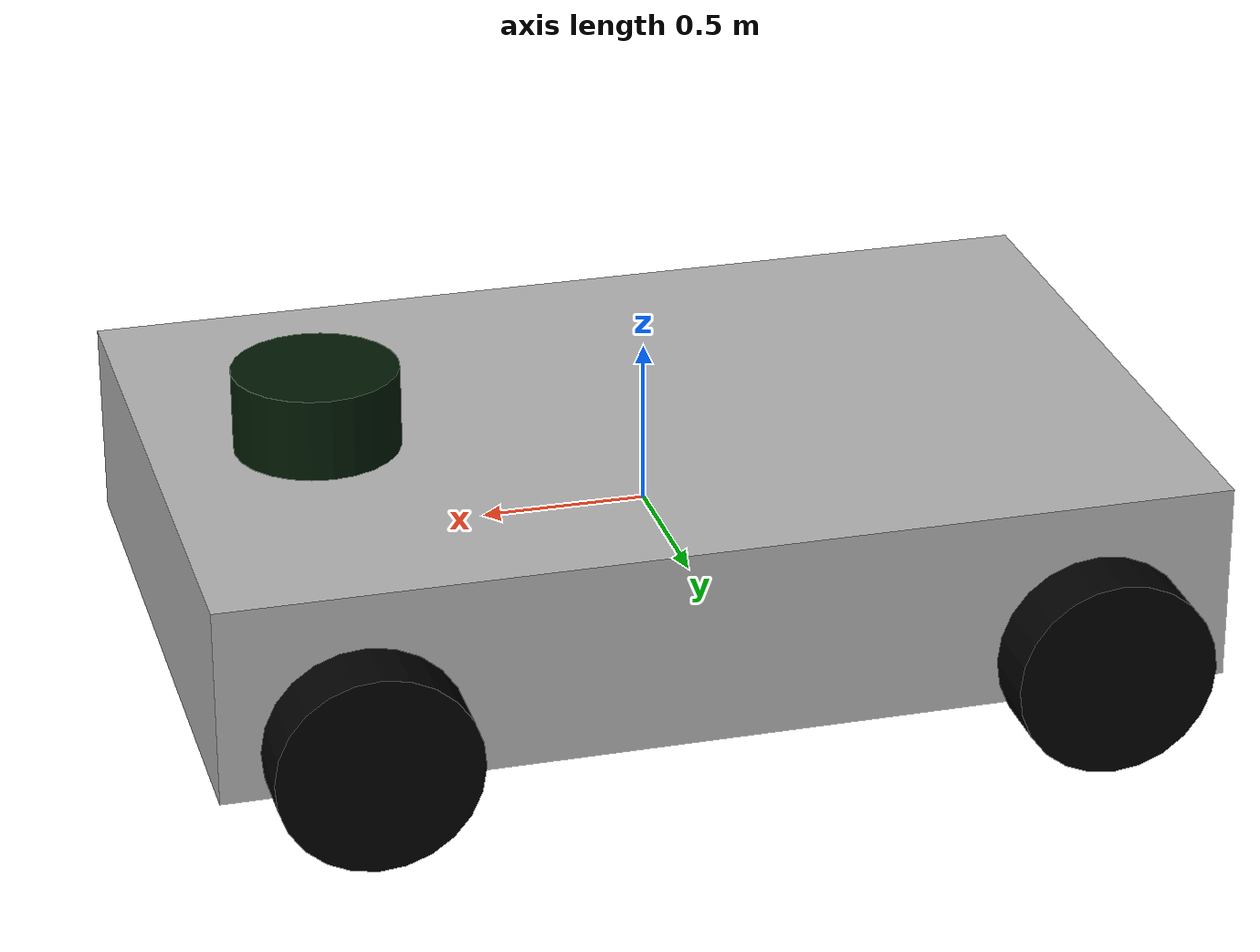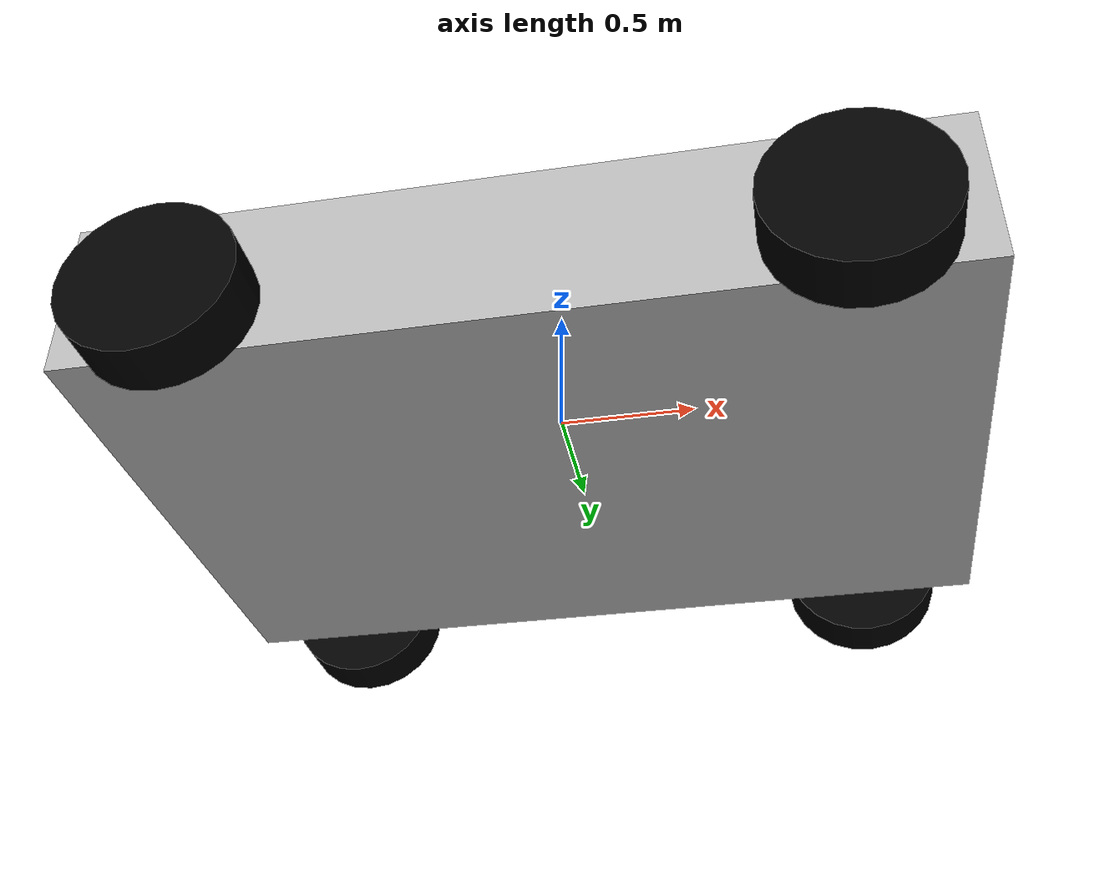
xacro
<?xml version="1.0"?>
<robot name="perez_ros" xmlns:xacro="http://www.ros.org/wiki/xacro">
  <xacro:include filename="$(find perez)/urdf/materials.xacro" />
  <xacro:include filename="$(find perez)/urdf/perez_ros.gazebo.xacro" />

  <joint name="camera_link_joint" type="fixed">
    <origin rpy="0 0 0" xyz="1.43905 0.00396 0.18036" />
    <parent link="Cube_link" />
    <child link="camera_link" />
  </joint>

  <joint name="left_back_wheel_link_joint" type="continuous">
    <origin rpy="-1.57080 0.00000 0.00000" xyz="-1.08220 1.12533 -0.15000" />
    <parent link="Cube_link" />
    <child link="left_back_wheel_link" />
    <axis xyz="0.00000 0.00000 1.00000" />
  </joint>
  <joint name="left_front_wheel_link_joint" type="continuous">
    <origin rpy="-1.57080 0.00000 0.00000" xyz="1.08220 1.12533 -0.15000" />
    <parent link="Cube_link" />
    <child link="left_front_wheel_link" />
    <axis xyz="0.00000 0.00000 1.00000" />
  </joint>
  <joint name="lidar_link_joint" type="fixed">
    <origin rpy="0.00000 0.00000 0.00000" xyz="1.00000 0.00000 0.40000" />
    <parent link="Cube_link" />
    <child link="lidar_link" />
  </joint>
  <joint name="right_back_wheel_link_joint" type="continuous">
    <origin rpy="1.57080 0.00000 0.00000" xyz="-1.08220 -1.12533 -0.15000" />
    <parent link="Cube_link" />
    <child link="right_back_wheel_link" />
    <axis xyz="0.00000 0.00000 -1.00000" />
  </joint>
  <joint name="right_front_wheel_link_joint" type="continuous">
    <origin rpy="1.57080 0.00000 0.00000" xyz="1.08220 -1.12533 -0.15000" />
    <parent link="Cube_link" />
    <child link="right_front_wheel_link" />
    <axis xyz="0.00000 0.00000 -1.00000" />
  </joint>
  <link name="Cube_link">
    <collision name="Cube_collision">
      <origin rpy="0.00000 0.00000 0.00000" xyz="-0.00000 -0.00000 0.00000" />
      <geometry>
        <box size="3.00000 2.00000 0.60000" />
      </geometry>
    </collision>
    <inertial>
      <inertia ixx="0.34880" ixy="0.00000" ixz="0.00000" iyy="0.74880" iyz="0.00000" izz="1.04000" />
      <origin rpy="0.00000 0.00000 0.00000" xyz="-0.00000 -0.00000 0.00000" />
      <mass value="0.96000" />
    </inertial>
    <visual name="Cube">
      <material name="body" />
      <origin rpy="0.00000 0.00000 0.00000" xyz="0.00000 0.00000 0.00000" />
      <geometry>
        <box size="3.00000 2.00000 0.60000" />
      </geometry>
    </visual>
  </link>
  <link name="camera_link">
    <collision name="camera_collision">
      <origin rpy="-0.00000 -0.00000 0.00000" xyz="-0.00000 -0.00000 0.00000" />
      <geometry>
        <box size="0.09091 0.09091 0.20000" />
      </geometry>
    </collision>
    <inertial>
      <inertia ixx="0.00132" ixy="0.00000" ixz="-0.00000" iyy="0.00386" iyz="0.00000" izz="0.00386" />
      <origin rpy="0.00000 0.00000 0.00000" xyz="0.00000 0.00000 0.00000" />
      <mass value="0.96000" />
    </inertial>
    <visual name="camera">
      <material name="camera" />
      <origin rpy="-1.57080 -1.57080 0.00000" xyz="-0.00000 -0.00000 0.00000" />
      <geometry>
        <box size="0.20000 0.09091 0.09091" />
      </geometry>
    </visual>
  </link>
  <link name="left_back_wheel_link">
    <collision name="left_back_wheel_collision">
      <origin rpy="0.00000 -0.00000 -1.57080" xyz="0.00000 0.00000 0.00000" />
      <geometry>
        <cylinder radius="0.30000" length="0.20000" />
      </geometry>
    </collision>
    <inertial>
      <inertia ixx="0.02480" ixy="0.00000" ixz="0.00000" iyy="0.04320" iyz="-0.00000" izz="0.02480" />
      <origin rpy="0.00000 0.00000 0.00000" xyz="0.00000 0.00000 0.00000" />
      <mass value="0.96000" />
    </inertial>
    <visual name="left_back_wheel">
      <material name="tire" />
      <origin rpy="0.00000 0.00000 0.00000" xyz="0.00000 -0.00000 0.00000" />
      <geometry>
        <cylinder radius="0.30000" length="0.20000" />
      </geometry>
    </visual>
  </link>
  <link name="left_front_wheel_link">
    <collision name="left_front_wheel_collision">
      <origin rpy="-0.00000 -0.00000 1.57080" xyz="0.00000 0.00000 0.00000" />
      <geometry>
        <cylinder radius="0.30000" length="0.20000" />
      </geometry>
    </collision>
    <inertial>
      <inertia ixx="0.02480" ixy="0.00000" ixz="0.00000" iyy="0.04320" iyz="-0.00000" izz="0.02480" />
      <origin rpy="0.00000 0.00000 0.00000" xyz="0.00000 0.00000 0.00000" />
      <mass value="0.96000" />
    </inertial>
    <visual name="left_front_wheel">
      <material name="tire" />
      <origin rpy="-0.00000 0.00000 -2.39675" xyz="-0.00000 0.00000 0.00000" />
      <geometry>
        <cylinder radius="0.30000" length="0.20000" />
      </geometry>
    </visual>
  </link>
  <link name="lidar_link">
    <collision name="lidar_collision">
      <origin rpy="0.00000 0.00000 0.00000" xyz="0.00000 0.00000 0.00000" />
      <geometry>
        <cylinder radius="0.25000" length="0.30000" />
      </geometry>
    </collision>
    <inertial>
      <inertia ixx="0.02220" ixy="0.00000" ixz="0.00000" iyy="0.02220" iyz="0.00000" izz="0.03000" />
      <origin rpy="0.00000 0.00000 0.00000" xyz="0.00000 0.00000 0.00000" />
      <mass value="0.96000" />
    </inertial>
    <visual name="lidar">
      <material name="lidar" />
      <origin rpy="0.00000 0.00000 0.00000" xyz="0.00000 0.00000 0.00000" />
      <geometry>
        <cylinder radius="0.25000" length="0.30000" />
      </geometry>
    </visual>
  </link>
  <link name="right_back_wheel_link">
    <collision name="right_back_wheel_collision">
      <origin rpy="0.00000 0.00000 0.00000" xyz="0.00000 0.00000 0.00000" />
      <geometry>
        <cylinder radius="0.30000" length="0.20000" />
      </geometry>
    </collision>
    <inertial>
      <inertia ixx="0.02480" ixy="0.00000" ixz="0.00000" iyy="0.04320" iyz="-0.00000" izz="0.02480" />
      <origin rpy="0.00000 0.00000 0.00000" xyz="0.00000 0.00000 0.00000" />
      <mass value="0.96000" />
    </inertial>
    <visual name="right_back_wheel">
      <material name="tire" />
      <origin rpy="-0.00000 0.00000 0.00000" xyz="0.00000 0.00000 0.00000" />
      <geometry>
        <cylinder radius="0.30000" length="0.20000" />
      </geometry>
    </visual>
  </link>
  <link name="right_front_wheel_link">
    <collision name="right_front_wheel_collision">
      <origin rpy="0.00000 0.00000 0.00000" xyz="0.00000 -0.00000 0.00000" />
      <geometry>
        <cylinder radius="0.30000" length="0.20000" />
      </geometry>
    </collision>
    <inertial>
      <inertia ixx="0.02480" ixy="0.00000" ixz="0.00000" iyy="0.04320" iyz="0.00000" izz="0.02480" />
      <origin rpy="0.00000 0.00000 0.00000" xyz="0.00000 -0.00000 0.00000" />
      <mass value="0.96000" />
    </inertial>
    <visual name="right_front_wheel">
      <material name="tire" />
      <origin rpy="0.00000 0.00000 0.00000" xyz="0.00000 0.00000 0.00000" />
      <geometry>
        <cylinder radius="0.30000" length="0.20000" />
      </geometry>
    </visual>
  </link>
</robot>

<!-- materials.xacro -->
<robot name="perez_ros" xmlns:xacro="http://www.ros.org/wiki/xacro" >

  <material name="body">
    <color rgba="0.7 0.7 0.7 1.00000" />
  </material>
  <material name="tire">
    <color rgba="0.00000 0.00000 0.00000 1.00000" />
  </material>
  <material name="camera">
    <color rgba="0.80000 0.80000 0.80000 1.00000" />
  </material>
  <material name="lidar">
    <color rgba="0.00392 0.09804 0.01569 1.00000" />
  </material>

</robot>
